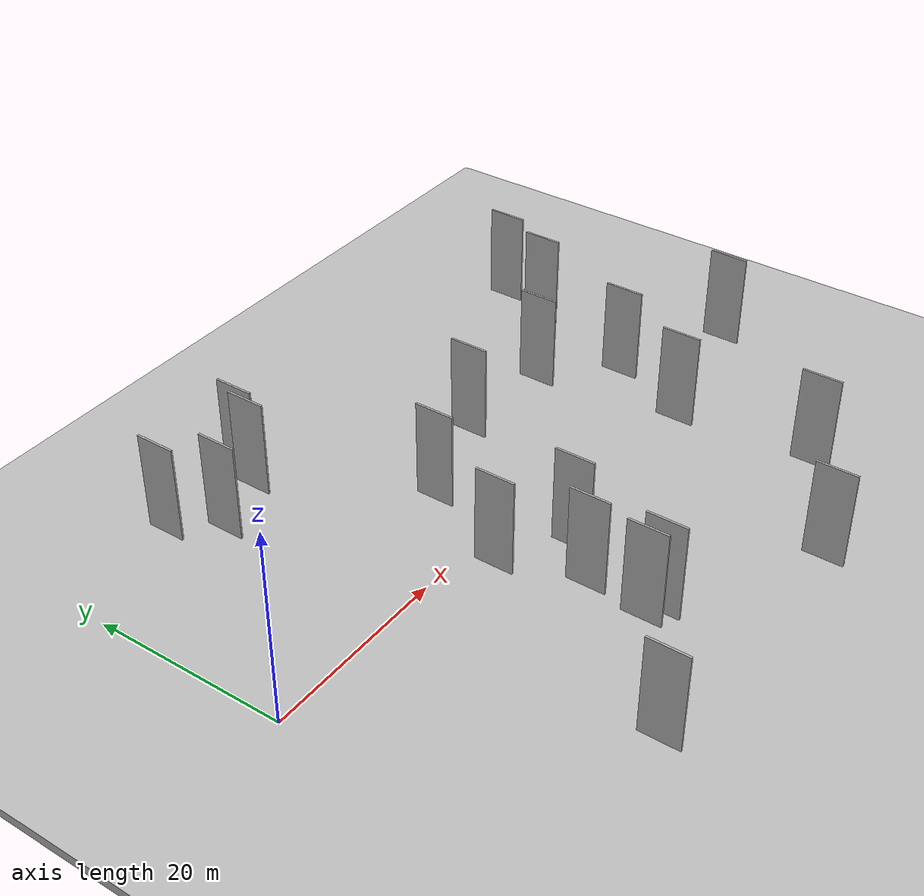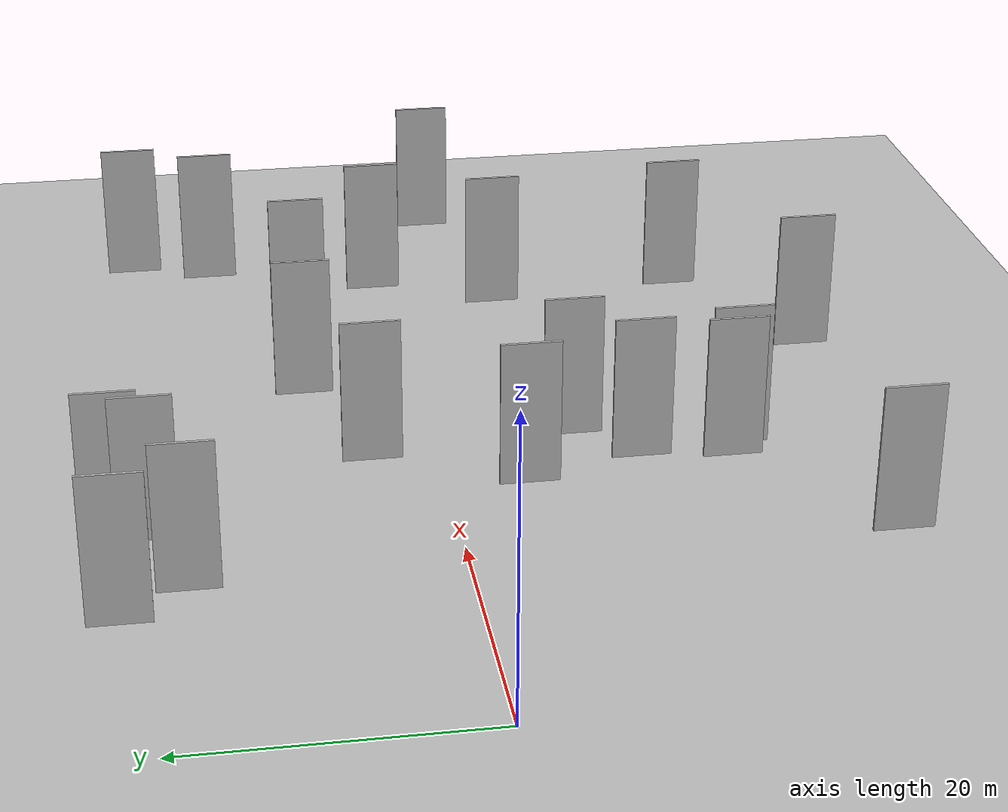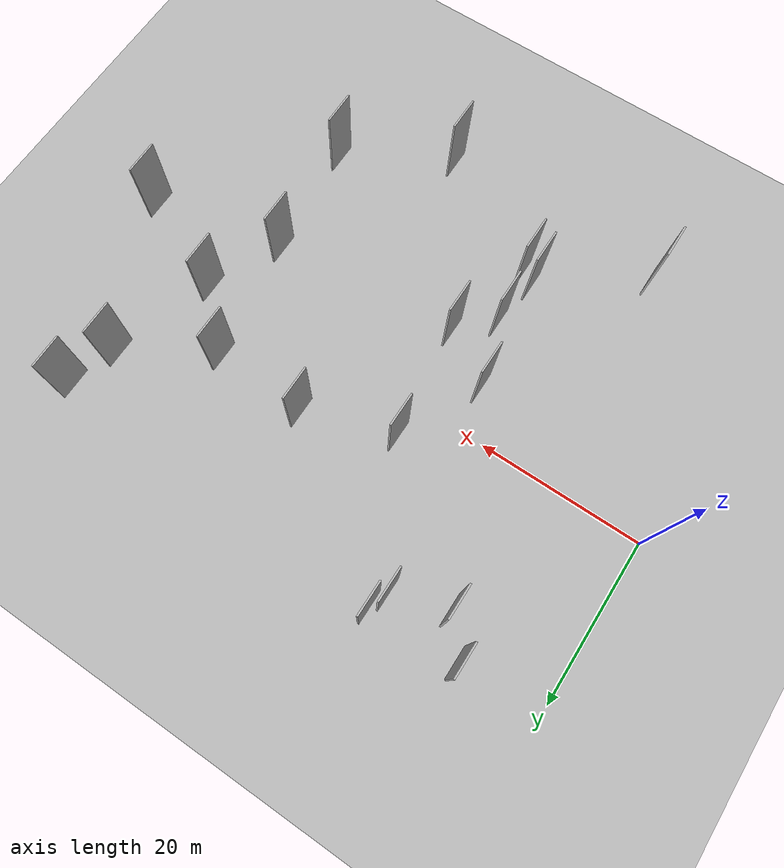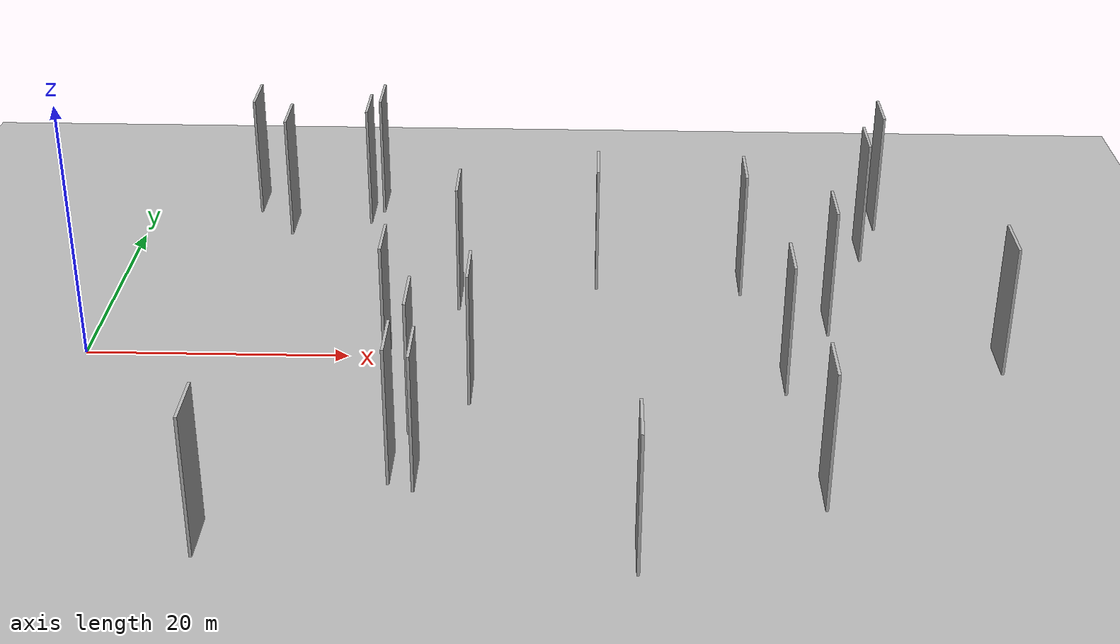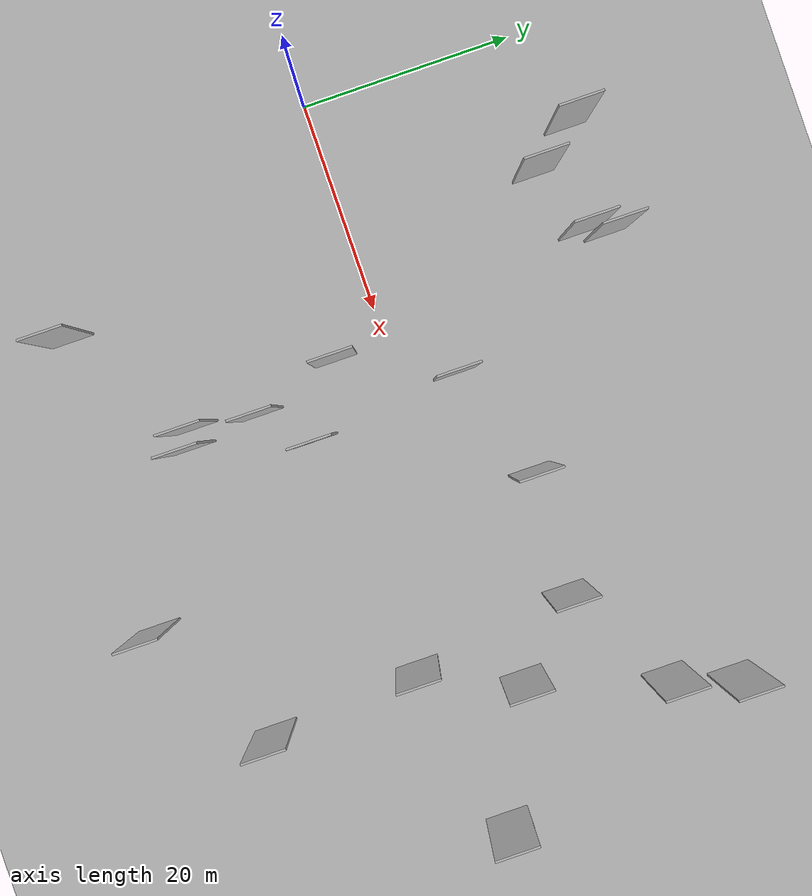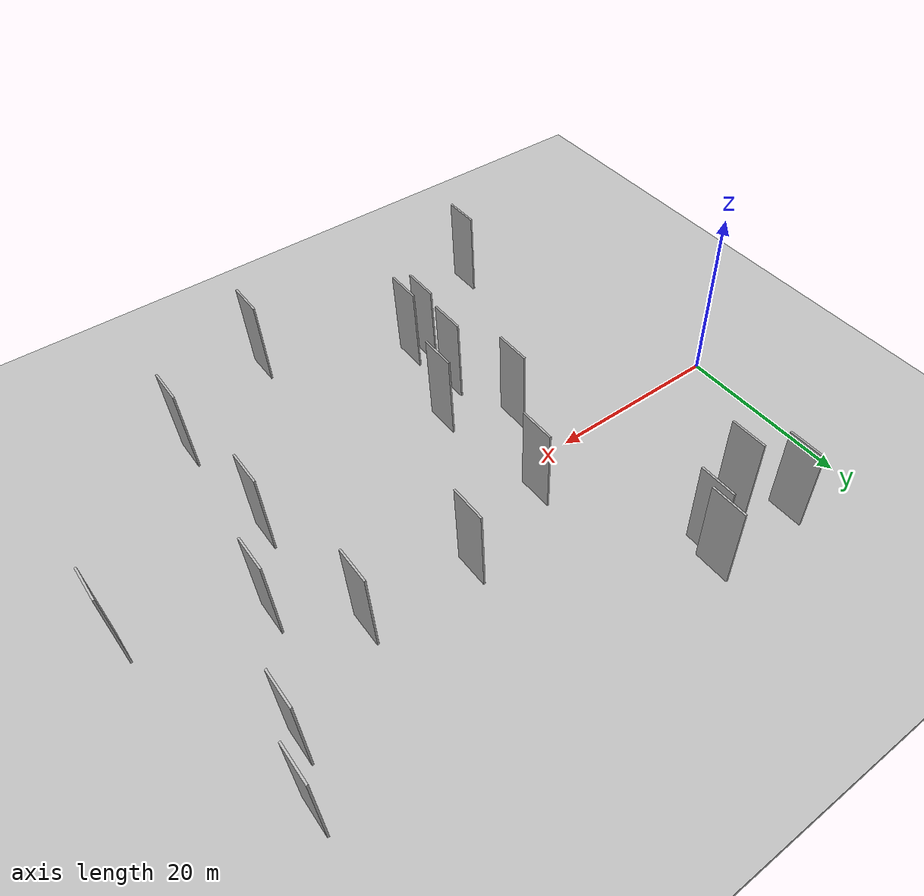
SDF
<?xml version="1.0" encoding="utf-8"?>

<sdf version="1.6">

   <world name="default">

      <gui fullscreen="0">

         <camera name="user_camera">

            <pose>-15 0 4.57585 0 0 0</pose>

            <view_controller>orbit</view_controller>

         </camera>

      </gui>

      <scene>

         <sky>

           <clouds>

             <speed>12</speed>

           </clouds>

         </sky>

         <ambient>0.4 0.4 0.4 1</ambient>

         <background>0.7 0.7 0.7 1</background>

         <shadows>1</shadows>

      </scene>

      <gravity>0 0 -9.8066</gravity>

      <magnetic_field>6e-06 2.3e-05 -4.2e-05</magnetic_field>

      <physics default="0" name="default_physics" type="ode">

         <ode>

            <solver>

               <type>quick</type>

               <iters>10</iters>

               <sor>1.0</sor>

               <use_dynamic_moi_rescaling>0</use_dynamic_moi_rescaling>

            </solver>

            <constraints>

               <cfm>0</cfm>

               <erp>0.2</erp>

               <contact_max_correcting_vel>100</contact_max_correcting_vel>

               <contact_surface_layer>0.001</contact_surface_layer>

            </constraints>

         </ode>

         <max_step_size>0.004</max_step_size>

         <real_time_factor>1</real_time_factor>

         <real_time_update_rate>250</real_time_update_rate>

      </physics>

      <light name="sun" type="directional">

         <cast_shadows>1</cast_shadows>

         <pose>0 0 10 0 0 0</pose>

         <diffuse>0.8 0.8 0.8 1</diffuse>

         <specular>0.2 0.2 0.2 1</specular>

         <attenuation>

            <range>1000</range>

            <constant>0.9</constant>

            <linear>0.01</linear>

            <quadratic>0.001</quadratic>

         </attenuation>

         <direction>-0.5 0.1 -0.9</direction>

      </light>

      <include>

         <name>ground_plane_1</name>

         <uri>model://HANNAS_ground_plane</uri>

         <pose>0 0 0  0 0 0</pose>

      </include>

      <include>

         <name>ground_plane_2</name>

         <uri>model://HANNAS_ground_plane</uri>

         <pose>100 0 0  0 0 0</pose>

      </include>

      <model name="HANNAS_wall_1">

         <static>1</static>

         <pose frame="">13.4826 17.7046 2.5 0.000000 0.000000 1.570796</pose>

         <link name="link">

            <pose frame="">0 0 5.00 0 0 0</pose>

            <collision name="collision">

               <geometry>

                  <box>

                     <size>4.00 0.2 10.00</size>

                  </box>

               </geometry>

               <max_contacts>10</max_contacts>

               <surface>

                  <contact>

                     <ode/>

                  </contact>

                  <bounce/>

                  <friction>

                     <torsional>

                        <ode/>

                     </torsional>

                     <ode/>

                  </friction>

               </surface>

            </collision>

            <visual name="visual">

               <cast_shadows>0</cast_shadows>

               <geometry>

                  <box>

                     <size>4.00 0.2 10.00</size>

                  </box>

               </geometry>

               <material>

                  <script>

                     <uri>model://HANNAS_wall/materials/scripts</uri>

                     <uri>model://HANNAS_wall/materials/textures</uri>

                     <name>vrc/HANNAS_wall</name>

                  </script>

               </material>

            </visual>

            <self_collide>0</self_collide>

            <enable_wind>0</enable_wind>

            <kinematic>0</kinematic>

         </link>

      </model>

      <model name="HANNAS_wall_2">

         <static>1</static>

         <pose frame="">49.8668 8.0611 2.5 0.000000 0.000000 1.570796</pose>

         <link name="link">

            <pose frame="">0 0 5.00 0 0 0</pose>

            <collision name="collision">

               <geometry>

                  <box>

                     <size>4.00 0.2 10.00</size>

                  </box>

               </geometry>

               <max_contacts>10</max_contacts>

               <surface>

                  <contact>

                     <ode/>

                  </contact>

                  <bounce/>

                  <friction>

                     <torsional>

                        <ode/>

                     </torsional>

                     <ode/>

                  </friction>

               </surface>

            </collision>

            <visual name="visual">

               <cast_shadows>0</cast_shadows>

               <geometry>

                  <box>

                     <size>4.00 0.2 10.00</size>

                  </box>

               </geometry>

               <material>

                  <script>

                     <uri>model://HANNAS_wall/materials/scripts</uri>

                     <uri>model://HANNAS_wall/materials/textures</uri>

                     <name>vrc/HANNAS_wall</name>

                  </script>

               </material>

            </visual>

            <self_collide>0</self_collide>

            <enable_wind>0</enable_wind>

            <kinematic>0</kinematic>

         </link>

      </model>

      <model name="HANNAS_wall_3">

         <static>1</static>

         <pose frame="">41.2540 -27.9300 2.5 0.000000 0.000000 1.570796</pose>

         <link name="link">

            <pose frame="">0 0 5.00 0 0 0</pose>

            <collision name="collision">

               <geometry>

                  <box>

                     <size>4.00 0.2 10.00</size>

                  </box>

               </geometry>

               <max_contacts>10</max_contacts>

               <surface>

                  <contact>

                     <ode/>

                  </contact>

                  <bounce/>

                  <friction>

                     <torsional>

                        <ode/>

                     </torsional>

                     <ode/>

                  </friction>

               </surface>

            </collision>

            <visual name="visual">

               <cast_shadows>0</cast_shadows>

               <geometry>

                  <box>

                     <size>4.00 0.2 10.00</size>

                  </box>

               </geometry>

               <material>

                  <script>

                     <uri>model://HANNAS_wall/materials/scripts</uri>

                     <uri>model://HANNAS_wall/materials/textures</uri>

                     <name>vrc/HANNAS_wall</name>

                  </script>

               </material>

            </visual>

            <self_collide>0</self_collide>

            <enable_wind>0</enable_wind>

            <kinematic>0</kinematic>

         </link>

      </model>

      <model name="HANNAS_wall_4">

         <static>1</static>

         <pose frame="">59.8852 14.1902 2.5 0.000000 0.000000 1.570796</pose>

         <link name="link">

            <pose frame="">0 0 5.00 0 0 0</pose>

            <collision name="collision">

               <geometry>

                  <box>

                     <size>4.00 0.2 10.00</size>

                  </box>

               </geometry>

               <max_contacts>10</max_contacts>

               <surface>

                  <contact>

                     <ode/>

                  </contact>

                  <bounce/>

                  <friction>

                     <torsional>

                        <ode/>

                     </torsional>

                     <ode/>

                  </friction>

               </surface>

            </collision>

            <visual name="visual">

               <cast_shadows>0</cast_shadows>

               <geometry>

                  <box>

                     <size>4.00 0.2 10.00</size>

                  </box>

               </geometry>

               <material>

                  <script>

                     <uri>model://HANNAS_wall/materials/scripts</uri>

                     <uri>model://HANNAS_wall/materials/textures</uri>

                     <name>vrc/HANNAS_wall</name>

                  </script>

               </material>

            </visual>

            <self_collide>0</self_collide>

            <enable_wind>0</enable_wind>

            <kinematic>0</kinematic>

         </link>

      </model>

      <model name="HANNAS_wall_5">

         <static>1</static>

         <pose frame="">10.2670 21.8854 2.5 0.000000 0.000000 1.570796</pose>

         <link name="link">

            <pose frame="">0 0 5.00 0 0 0</pose>

            <collision name="collision">

               <geometry>

                  <box>

                     <size>4.00 0.2 10.00</size>

                  </box>

               </geometry>

               <max_contacts>10</max_contacts>

               <surface>

                  <contact>

                     <ode/>

                  </contact>

                  <bounce/>

                  <friction>

                     <torsional>

                        <ode/>

                     </torsional>

                     <ode/>

                  </friction>

               </surface>

            </collision>

            <visual name="visual">

               <cast_shadows>0</cast_shadows>

               <geometry>

                  <box>

                     <size>4.00 0.2 10.00</size>

                  </box>

               </geometry>

               <material>

                  <script>

                     <uri>model://HANNAS_wall/materials/scripts</uri>

                     <uri>model://HANNAS_wall/materials/textures</uri>

                     <name>vrc/HANNAS_wall</name>

                  </script>

               </material>

            </visual>

            <self_collide>0</self_collide>

            <enable_wind>0</enable_wind>

            <kinematic>0</kinematic>

         </link>

      </model>

      <model name="HANNAS_wall_6">

         <static>1</static>

         <pose frame="">26.9243 -19.5669 2.5 0.000000 0.000000 1.570796</pose>

         <link name="link">

            <pose frame="">0 0 5.00 0 0 0</pose>

            <collision name="collision">

               <geometry>

                  <box>

                     <size>4.00 0.2 10.00</size>

                  </box>

               </geometry>

               <max_contacts>10</max_contacts>

               <surface>

                  <contact>

                     <ode/>

                  </contact>

                  <bounce/>

                  <friction>

                     <torsional>

                        <ode/>

                     </torsional>

                     <ode/>

                  </friction>

               </surface>

            </collision>

            <visual name="visual">

               <cast_shadows>0</cast_shadows>

               <geometry>

                  <box>

                     <size>4.00 0.2 10.00</size>

                  </box>

               </geometry>

               <material>

                  <script>

                     <uri>model://HANNAS_wall/materials/scripts</uri>

                     <uri>model://HANNAS_wall/materials/textures</uri>

                     <name>vrc/HANNAS_wall</name>

                  </script>

               </material>

            </visual>

            <self_collide>0</self_collide>

            <enable_wind>0</enable_wind>

            <kinematic>0</kinematic>

         </link>

      </model>

      <model name="HANNAS_wall_7">

         <static>1</static>

         <pose frame="">55.9556 1.8816 2.5 0.000000 0.000000 1.570796</pose>

         <link name="link">

            <pose frame="">0 0 5.00 0 0 0</pose>

            <collision name="collision">

               <geometry>

                  <box>

                     <size>4.00 0.2 10.00</size>

                  </box>

               </geometry>

               <max_contacts>10</max_contacts>

               <surface>

                  <contact>

                     <ode/>

                  </contact>

                  <bounce/>

                  <friction>

                     <torsional>

                        <ode/>

                     </torsional>

                     <ode/>

                  </friction>

               </surface>

            </collision>

            <visual name="visual">

               <cast_shadows>0</cast_shadows>

               <geometry>

                  <box>

                     <size>4.00 0.2 10.00</size>

                  </box>

               </geometry>

               <material>

                  <script>

                     <uri>model://HANNAS_wall/materials/scripts</uri>

                     <uri>model://HANNAS_wall/materials/textures</uri>

                     <name>vrc/HANNAS_wall</name>

                  </script>

               </material>

            </visual>

            <self_collide>0</self_collide>

            <enable_wind>0</enable_wind>

            <kinematic>0</kinematic>

         </link>

      </model>

      <model name="HANNAS_wall_8">

         <static>1</static>

         <pose frame="">23.5625 -4.7870 2.5 0.000000 0.000000 1.570796</pose>

         <link name="link">

            <pose frame="">0 0 5.00 0 0 0</pose>

            <collision name="collision">

               <geometry>

                  <box>

                     <size>4.00 0.2 10.00</size>

                  </box>

               </geometry>

               <max_contacts>10</max_contacts>

               <surface>

                  <contact>

                     <ode/>

                  </contact>

                  <bounce/>

                  <friction>

                     <torsional>

                        <ode/>

                     </torsional>

                     <ode/>

                  </friction>

               </surface>

            </collision>

            <visual name="visual">

               <cast_shadows>0</cast_shadows>

               <geometry>

                  <box>

                     <size>4.00 0.2 10.00</size>

                  </box>

               </geometry>

               <material>

                  <script>

                     <uri>model://HANNAS_wall/materials/scripts</uri>

                     <uri>model://HANNAS_wall/materials/textures</uri>

                     <name>vrc/HANNAS_wall</name>

                  </script>

               </material>

            </visual>

            <self_collide>0</self_collide>

            <enable_wind>0</enable_wind>

            <kinematic>0</kinematic>

         </link>

      </model>

      <model name="HANNAS_wall_9">

         <static>1</static>

         <pose frame="">52.0628 -6.7810 2.5 0.000000 0.000000 1.570796</pose>

         <link name="link">

            <pose frame="">0 0 5.00 0 0 0</pose>

            <collision name="collision">

               <geometry>

                  <box>

                     <size>4.00 0.2 10.00</size>

                  </box>

               </geometry>

               <max_contacts>10</max_contacts>

               <surface>

                  <contact>

                     <ode/>

                  </contact>

                  <bounce/>

                  <friction>

                     <torsional>

                        <ode/>

                     </torsional>

                     <ode/>

                  </friction>

               </surface>

            </collision>

            <visual name="visual">

               <cast_shadows>0</cast_shadows>

               <geometry>

                  <box>

                     <size>4.00 0.2 10.00</size>

                  </box>

               </geometry>

               <material>

                  <script>

                     <uri>model://HANNAS_wall/materials/scripts</uri>

                     <uri>model://HANNAS_wall/materials/textures</uri>

                     <name>vrc/HANNAS_wall</name>

                  </script>

               </material>

            </visual>

            <self_collide>0</self_collide>

            <enable_wind>0</enable_wind>

            <kinematic>0</kinematic>

         </link>

      </model>

      <model name="HANNAS_wall_10">

         <static>1</static>

         <pose frame="">25.2398 -18.7683 2.5 0.000000 0.000000 1.570796</pose>

         <link name="link">

            <pose frame="">0 0 5.00 0 0 0</pose>

            <collision name="collision">

               <geometry>

                  <box>

                     <size>4.00 0.2 10.00</size>

                  </box>

               </geometry>

               <max_contacts>10</max_contacts>

               <surface>

                  <contact>

                     <ode/>

                  </contact>

                  <bounce/>

                  <friction>

                     <torsional>

                        <ode/>

                     </torsional>

                     <ode/>

                  </friction>

               </surface>

            </collision>

            <visual name="visual">

               <cast_shadows>0</cast_shadows>

               <geometry>

                  <box>

                     <size>4.00 0.2 10.00</size>

                  </box>

               </geometry>

               <material>

                  <script>

                     <uri>model://HANNAS_wall/materials/scripts</uri>

                     <uri>model://HANNAS_wall/materials/textures</uri>

                     <name>vrc/HANNAS_wall</name>

                  </script>

               </material>

            </visual>

            <self_collide>0</self_collide>

            <enable_wind>0</enable_wind>

            <kinematic>0</kinematic>

         </link>

      </model>

      <model name="HANNAS_wall_11">

         <static>1</static>

         <pose frame="">28.2113 5.0034 2.5 0.000000 0.000000 1.570796</pose>

         <link name="link">

            <pose frame="">0 0 5.00 0 0 0</pose>

            <collision name="collision">

               <geometry>

                  <box>

                     <size>4.00 0.2 10.00</size>

                  </box>

               </geometry>

               <max_contacts>10</max_contacts>

               <surface>

                  <contact>

                     <ode/>

                  </contact>

                  <bounce/>

                  <friction>

                     <torsional>

                        <ode/>

                     </torsional>

                     <ode/>

                  </friction>

               </surface>

            </collision>

            <visual name="visual">

               <cast_shadows>0</cast_shadows>

               <geometry>

                  <box>

                     <size>4.00 0.2 10.00</size>

                  </box>

               </geometry>

               <material>

                  <script>

                     <uri>model://HANNAS_wall/materials/scripts</uri>

                     <uri>model://HANNAS_wall/materials/textures</uri>

                     <name>vrc/HANNAS_wall</name>

                  </script>

               </material>

            </visual>

            <self_collide>0</self_collide>

            <enable_wind>0</enable_wind>

            <kinematic>0</kinematic>

         </link>

      </model>

      <model name="HANNAS_wall_12">

         <static>1</static>

         <pose frame="">26.0227 -12.7369 2.5 0.000000 0.000000 1.570796</pose>

         <link name="link">

            <pose frame="">0 0 5.00 0 0 0</pose>

            <collision name="collision">

               <geometry>

                  <box>

                     <size>4.00 0.2 10.00</size>

                  </box>

               </geometry>

               <max_contacts>10</max_contacts>

               <surface>

                  <contact>

                     <ode/>

                  </contact>

                  <bounce/>

                  <friction>

                     <torsional>

                        <ode/>

                     </torsional>

                     <ode/>

                  </friction>

               </surface>

            </collision>

            <visual name="visual">

               <cast_shadows>0</cast_shadows>

               <geometry>

                  <box>

                     <size>4.00 0.2 10.00</size>

                  </box>

               </geometry>

               <material>

                  <script>

                     <uri>model://HANNAS_wall/materials/scripts</uri>

                     <uri>model://HANNAS_wall/materials/textures</uri>

                     <name>vrc/HANNAS_wall</name>

                  </script>

               </material>

            </visual>

            <self_collide>0</self_collide>

            <enable_wind>0</enable_wind>

            <kinematic>0</kinematic>

         </link>

      </model>

      <model name="HANNAS_wall_13">

         <static>1</static>

         <pose frame="">19.7957 19.9753 2.5 0.000000 0.000000 1.570796</pose>

         <link name="link">

            <pose frame="">0 0 5.00 0 0 0</pose>

            <collision name="collision">

               <geometry>

                  <box>

                     <size>4.00 0.2 10.00</size>

                  </box>

               </geometry>

               <max_contacts>10</max_contacts>

               <surface>

                  <contact>

                     <ode/>

                  </contact>

                  <bounce/>

                  <friction>

                     <torsional>

                        <ode/>

                     </torsional>

                     <ode/>

                  </friction>

               </surface>

            </collision>

            <visual name="visual">

               <cast_shadows>0</cast_shadows>

               <geometry>

                  <box>

                     <size>4.00 0.2 10.00</size>

                  </box>

               </geometry>

               <material>

                  <script>

                     <uri>model://HANNAS_wall/materials/scripts</uri>

                     <uri>model://HANNAS_wall/materials/textures</uri>

                     <name>vrc/HANNAS_wall</name>

                  </script>

               </material>

            </visual>

            <self_collide>0</self_collide>

            <enable_wind>0</enable_wind>

            <kinematic>0</kinematic>

         </link>

      </model>

      <model name="HANNAS_wall_14">

         <static>1</static>

         <pose frame="">38.6927 8.6469 2.5 0.000000 0.000000 1.570796</pose>

         <link name="link">

            <pose frame="">0 0 5.00 0 0 0</pose>

            <collision name="collision">

               <geometry>

                  <box>

                     <size>4.00 0.2 10.00</size>

                  </box>

               </geometry>

               <max_contacts>10</max_contacts>

               <surface>

                  <contact>

                     <ode/>

                  </contact>

                  <bounce/>

                  <friction>

                     <torsional>

                        <ode/>

                     </torsional>

                     <ode/>

                  </friction>

               </surface>

            </collision>

            <visual name="visual">

               <cast_shadows>0</cast_shadows>

               <geometry>

                  <box>

                     <size>4.00 0.2 10.00</size>

                  </box>

               </geometry>

               <material>

                  <script>

                     <uri>model://HANNAS_wall/materials/scripts</uri>

                     <uri>model://HANNAS_wall/materials/textures</uri>

                     <name>vrc/HANNAS_wall</name>

                  </script>

               </material>

            </visual>

            <self_collide>0</self_collide>

            <enable_wind>0</enable_wind>

            <kinematic>0</kinematic>

         </link>

      </model>

      <model name="HANNAS_wall_15">

         <static>1</static>

         <pose frame="">20.6790 22.1505 2.5 0.000000 0.000000 1.570796</pose>

         <link name="link">

            <pose frame="">0 0 5.00 0 0 0</pose>

            <collision name="collision">

               <geometry>

                  <box>

                     <size>4.00 0.2 10.00</size>

                  </box>

               </geometry>

               <max_contacts>10</max_contacts>

               <surface>

                  <contact>

                     <ode/>

                  </contact>

                  <bounce/>

                  <friction>

                     <torsional>

                        <ode/>

                     </torsional>

                     <ode/>

                  </friction>

               </surface>

            </collision>

            <visual name="visual">

               <cast_shadows>0</cast_shadows>

               <geometry>

                  <box>

                     <size>4.00 0.2 10.00</size>

                  </box>

               </geometry>

               <material>

                  <script>

                     <uri>model://HANNAS_wall/materials/scripts</uri>

                     <uri>model://HANNAS_wall/materials/textures</uri>

                     <name>vrc/HANNAS_wall</name>

                  </script>

               </material>

            </visual>

            <self_collide>0</self_collide>

            <enable_wind>0</enable_wind>

            <kinematic>0</kinematic>

         </link>

      </model>

      <model name="HANNAS_wall_16">

         <static>1</static>

         <pose frame="">67.8141 -3.4992 2.5 0.000000 0.000000 1.570796</pose>

         <link name="link">

            <pose frame="">0 0 5.00 0 0 0</pose>

            <collision name="collision">

               <geometry>

                  <box>

                     <size>4.00 0.2 10.00</size>

                  </box>

               </geometry>

               <max_contacts>10</max_contacts>

               <surface>

                  <contact>

                     <ode/>

                  </contact>

                  <bounce/>

                  <friction>

                     <torsional>

                        <ode/>

                     </torsional>

                     <ode/>

                  </friction>

               </surface>

            </collision>

            <visual name="visual">

               <cast_shadows>0</cast_shadows>

               <geometry>

                  <box>

                     <size>4.00 0.2 10.00</size>

                  </box>

               </geometry>

               <material>

                  <script>

                     <uri>model://HANNAS_wall/materials/scripts</uri>

                     <uri>model://HANNAS_wall/materials/textures</uri>

                     <name>vrc/HANNAS_wall</name>

                  </script>

               </material>

            </visual>

            <self_collide>0</self_collide>

            <enable_wind>0</enable_wind>

            <kinematic>0</kinematic>

         </link>

      </model>

      <model name="HANNAS_wall_17">

         <static>1</static>

         <pose frame="">61.7792 19.9285 2.5 0.000000 0.000000 1.570796</pose>

         <link name="link">

            <pose frame="">0 0 5.00 0 0 0</pose>

            <collision name="collision">

               <geometry>

                  <box>

                     <size>4.00 0.2 10.00</size>

                  </box>

               </geometry>

               <max_contacts>10</max_contacts>

               <surface>

                  <contact>

                     <ode/>

                  </contact>

                  <bounce/>

                  <friction>

                     <torsional>

                        <ode/>

                     </torsional>

                     <ode/>

                  </friction>

               </surface>

            </collision>

            <visual name="visual">

               <cast_shadows>0</cast_shadows>

               <geometry>

                  <box>

                     <size>4.00 0.2 10.00</size>

                  </box>

               </geometry>

               <material>

                  <script>

                     <uri>model://HANNAS_wall/materials/scripts</uri>

                     <uri>model://HANNAS_wall/materials/textures</uri>

                     <name>vrc/HANNAS_wall</name>

                  </script>

               </material>

            </visual>

            <self_collide>0</self_collide>

            <enable_wind>0</enable_wind>

            <kinematic>0</kinematic>

         </link>

      </model>

      <model name="HANNAS_wall_18">

         <static>1</static>

         <pose frame="">14.0644 -26.9646 2.5 0.000000 0.000000 1.570796</pose>

         <link name="link">

            <pose frame="">0 0 5.00 0 0 0</pose>

            <collision name="collision">

               <geometry>

                  <box>

                     <size>4.00 0.2 10.00</size>

                  </box>

               </geometry>

               <max_contacts>10</max_contacts>

               <surface>

                  <contact>

                     <ode/>

                  </contact>

                  <bounce/>

                  <friction>

                     <torsional>

                        <ode/>

                     </torsional>

                     <ode/>

                  </friction>

               </surface>

            </collision>

            <visual name="visual">

               <cast_shadows>0</cast_shadows>

               <geometry>

                  <box>

                     <size>4.00 0.2 10.00</size>

                  </box>

               </geometry>

               <material>

                  <script>

                     <uri>model://HANNAS_wall/materials/scripts</uri>

                     <uri>model://HANNAS_wall/materials/textures</uri>

                     <name>vrc/HANNAS_wall</name>

                  </script>

               </material>

            </visual>

            <self_collide>0</self_collide>

            <enable_wind>0</enable_wind>

            <kinematic>0</kinematic>

         </link>

      </model>

      <model name="HANNAS_wall_19">

         <static>1</static>

         <pose frame="">29.8783 -8.7936 2.5 0.000000 0.000000 1.570796</pose>

         <link name="link">

            <pose frame="">0 0 5.00 0 0 0</pose>

            <collision name="collision">

               <geometry>

                  <box>

                     <size>4.00 0.2 10.00</size>

                  </box>

               </geometry>

               <max_contacts>10</max_contacts>

               <surface>

                  <contact>

                     <ode/>

                  </contact>

                  <bounce/>

                  <friction>

                     <torsional>

                        <ode/>

                     </torsional>

                     <ode/>

                  </friction>

               </surface>

            </collision>

            <visual name="visual">

               <cast_shadows>0</cast_shadows>

               <geometry>

                  <box>

                     <size>4.00 0.2 10.00</size>

                  </box>

               </geometry>

               <material>

                  <script>

                     <uri>model://HANNAS_wall/materials/scripts</uri>

                     <uri>model://HANNAS_wall/materials/textures</uri>

                     <name>vrc/HANNAS_wall</name>

                  </script>

               </material>

            </visual>

            <self_collide>0</self_collide>

            <enable_wind>0</enable_wind>

            <kinematic>0</kinematic>

         </link>

      </model>

      <model name="HANNAS_wall_20">

         <static>1</static>

         <pose frame="">53.3331 -20.8344 2.5 0.000000 0.000000 1.570796</pose>

         <link name="link">

            <pose frame="">0 0 5.00 0 0 0</pose>

            <collision name="collision">

               <geometry>

                  <box>

                     <size>4.00 0.2 10.00</size>

                  </box>

               </geometry>

               <max_contacts>10</max_contacts>

               <surface>

                  <contact>

                     <ode/>

                  </contact>

                  <bounce/>

                  <friction>

                     <torsional>

                        <ode/>

                     </torsional>

                     <ode/>

                  </friction>

               </surface>

            </collision>

            <visual name="visual">

               <cast_shadows>0</cast_shadows>

               <geometry>

                  <box>

                     <size>4.00 0.2 10.00</size>

                  </box>

               </geometry>

               <material>

                  <script>

                     <uri>model://HANNAS_wall/materials/scripts</uri>

                     <uri>model://HANNAS_wall/materials/textures</uri>

                     <name>vrc/HANNAS_wall</name>

                  </script>

               </material>

            </visual>

            <self_collide>0</self_collide>

            <enable_wind>0</enable_wind>

            <kinematic>0</kinematic>

         </link>

      </model>

   </world>

</sdf>

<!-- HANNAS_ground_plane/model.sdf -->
<sdf version="1.4">
<model name="HANNAS_ground_plane">
  <static>true</static>
    <link name="link">
      <collision name="collision">
        <geometry>
          <plane>
            <normal>0 0 1</normal>
            <size>1000 1000</size>
          </plane>
        </geometry>
        <surface>
          <friction>
            <ode>
              <mu>100</mu>
              <mu2>50</mu2>
            </ode>
          </friction>
        </surface>
      </collision>
      <visual name="visual">
        <cast_shadows>false</cast_shadows>
        <geometry>
          <plane>
            <normal>0 0 1</normal>
            <size>1000 1000</size>
          </plane>
        </geometry>
        <material>
          <script>
            <uri>model://HANNAS_ground_plane/materials/scripts/HANNAS_ground_plane.material</uri>
	    <uri>model://HANNAS_ground_plane/materials/textures</uri>
            <name>HANNASGroundPlane/Image</name>
          </script>
        </material>
      </visual>
    </link>
  </model>
</sdf>
